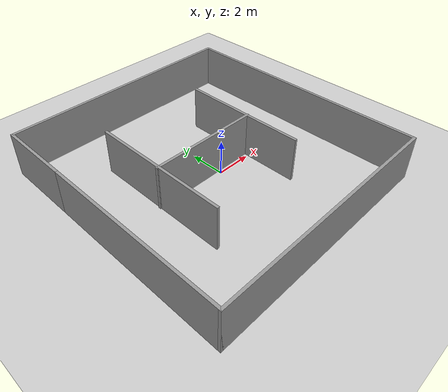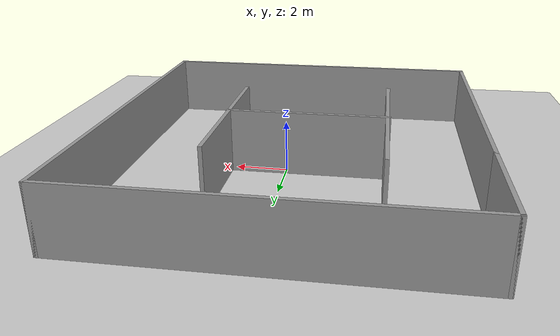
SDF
<sdf version="1.6">
 <world name="default">
  <light name="sun" type="directional">
   <pose>0 0 10 0 -0 0</pose>
   <diffuse>0.8 0.8 0.8 1</diffuse>
   <specular>0.2 0.2 0.2 1</specular>
   <attenuation>
    <range>1000</range>
    <constant>0.9</constant>
    <linear>0.01</linear>
    <quadratic>0.001</quadratic>
   </attenuation>
   <direction>-0.5 0.1 -0.9</direction>
  </light>
  <model name="ground_plane">
   <static>1</static>
   <link name="link">
    <collision name="collision">
     <geometry><plane><normal>0 0 1</normal><size>100 100</size></plane></geometry>
     <surface><friction><ode><mu>100</mu><mu2>50</mu2></ode></friction></surface>
    </collision>
    <visual name="visual">
     <cast_shadows>0</cast_shadows>
     <geometry><plane><normal>0 0 1</normal><size>100 100</size></plane></geometry>
     <material>
      <script><uri>file://media/materials/scripts/gazebo.material</uri><name>Gazebo/Grey</name></script>
     </material>
    </visual>
   </link>
  </model>
  <gravity>0 0 -9.8</gravity>
  <magnetic_field>6e-06 2.3e-05 -4.2e-05</magnetic_field>
  <atmosphere type="adiabatic"/>
  <physics name="default_physics" default="0" type="ode">
   <max_step_size>0.001</max_step_size>
   <real_time_factor>1</real_time_factor>
   <real_time_update_rate>1000</real_time_update_rate>
  </physics>
  <scene><ambient>0.4 0.4 0.4 1</ambient><background>0.7 0.7 0.7 1</background><shadows>1</shadows></scene>
  <spherical_coordinates>
   <surface_model>EARTH_WGS84</surface_model>
   <latitude_deg>0</latitude_deg>
   <longitude_deg>0</longitude_deg>
   <elevation>0</elevation>
   <heading_deg>0</heading_deg>
  </spherical_coordinates>
  <model name="coverage_test">
   <pose>-0.443684 0.180284 0 0 -0 0</pose>
   <link name="Wall_10">
    <collision name="Wall_10_Collision">
     <geometry><box><size>7.75 0.15 2.5</size></box></geometry>
     <pose>0 0 1.25 0 -0 0</pose>
    </collision>
    <visual name="Wall_10_Visual">
     <pose>0 0 1.25 0 -0 0</pose>
     <geometry><box><size>7.75 0.15 2.5</size></box></geometry>
     <material>
      <script><uri>file://media/materials/scripts/gazebo.material</uri><name>Gazebo/Grey</name></script>
      <ambient>1 1 1 1</ambient>
     </material>
     <meta><layer>0</layer></meta>
    </visual>
    <pose>-3.39815 0.183504 0 0 0 -1.5708</pose>
   </link>
   <link name="Wall_12">
    <collision name="Wall_12_Collision">
     <geometry><box><size>7 0.15 2.5</size></box></geometry>
     <pose>0 0 1.25 0 -0 0</pose>
    </collision>
    <visual name="Wall_12_Visual">
     <pose>0 0 1.25 0 -0 0</pose>
     <geometry><box><size>7 0.15 2.5</size></box></geometry>
     <material>
      <script><uri>file://media/materials/scripts/gazebo.material</uri><name>Gazebo/Grey</name></script>
      <ambient>1 1 1 1</ambient>
     </material>
     <meta><layer>0</layer></meta>
    </visual>
    <pose>2.62328 0.395763 0 0 0 -1.5708</pose>
   </link>
   <link name="Wall_14">
    <collision name="Wall_14_Collision">
     <geometry><box><size>6.25 0.15 2.5</size></box></geometry>
     <pose>0 0 1.25 0 -0 0</pose>
    </collision>
    <visual name="Wall_14_Visual">
     <pose>0 0 1.25 0 -0 0</pose>
     <geometry><box><size>6.25 0.15 2.5</size></box></geometry>
     <material>
      <script><uri>file://media/materials/scripts/gazebo.material</uri><name>Gazebo/Grey</name></script>
      <ambient>1 1 1 1</ambient>
     </material>
     <meta><layer>0</layer></meta>
    </visual>
    <pose>-0.401349 0.077715 0 0 -0 0</pose>
   </link>
   <link name="Wall_2">
    <collision name="Wall_2_Collision">
     <geometry><box><size>13.75 0.15 2.5</size></box></geometry>
     <pose>0 0 1.25 0 -0 0</pose>
    </collision>
    <visual name="Wall_2_Visual">
     <pose>0 0 1.25 0 -0 0</pose>
     <geometry><box><size>13.75 0.15 2.5</size></box></geometry>
     <material>
      <script><uri>file://media/materials/scripts/gazebo.material</uri><name>Gazebo/Grey</name></script>
      <ambient>1 1 1 1</ambient>
     </material>
     <meta><layer>0</layer></meta>
    </visual>
    <pose>0 -7.1 0 0 -0 0</pose>
   </link>
   <link name="Wall_4">
    <collision name="Wall_4_Collision">
     <geometry><box><size>10.25 0.15 2.5</size></box></geometry>
     <pose>0 0 1.25 0 -0 0</pose>
    </collision>
    <visual name="Wall_4_Visual">
     <pose>0 0 1.25 0 -0 0</pose>
     <geometry><box><size>10.25 0.15 2.5</size></box></geometry>
     <material>
      <script><uri>file://media/materials/scripts/gazebo.material</uri><name>Gazebo/Grey</name></script>
      <ambient>1 1 1 1</ambient>
     </material>
     <meta><layer>0</layer></meta>
    </visual>
    <pose>-6.8 -2.05 0 0 -0 1.5708</pose>
   </link>
   <link name="Wall_6">
    <collision name="Wall_6_Collision">
     <geometry><box><size>4.25 0.15 2.5</size></box></geometry>
     <pose>0 0 1.25 0 -0 0</pose>
    </collision>
    <visual name="Wall_6_Visual">
     <pose>0 0 1.25 0 -0 0</pose>
     <geometry><box><size>4.25 0.15 2.5</size></box></geometry>
     <material>
      <script><uri>file://media/materials/scripts/gazebo.material</uri><name>Gazebo/Grey</name></script>
      <ambient>1 1 1 1</ambient>
     </material>
     <meta><layer>0</layer></meta>
    </visual>
    <pose>-6.8 5.05 0 0 -0 1.5708</pose>
   </link>
   <link name="Wall_7">
    <collision name="Wall_7_Collision">
     <geometry><box><size>13.75 0.15 2.5</size></box></geometry>
     <pose>0 0 1.25 0 -0 0</pose>
    </collision>
    <visual name="Wall_7_Visual">
     <pose>0 0 1.25 0 -0 0</pose>
     <geometry><box><size>13.75 0.15 2.5</size></box></geometry>
     <material>
      <script><uri>file://media/materials/scripts/gazebo.material</uri><name>Gazebo/Grey</name></script>
      <ambient>1 1 1 1</ambient>
     </material>
     <meta><layer>0</layer></meta>
    </visual>
    <pose>0 7.1 0 0 -0 0</pose>
   </link>
   <link name="Wall_8">
    <collision name="Wall_8_Collision">
     <geometry><box><size>14.25 0.15 2.5</size></box></geometry>
     <pose>0 0 1.25 0 -0 0</pose>
    </collision>
    <visual name="Wall_8_Visual">
     <pose>0 0 1.25 0 -0 0</pose>
     <geometry><box><size>14.25 0.15 2.5</size></box></geometry>
     <material>
      <script><uri>file://media/materials/scripts/gazebo.material</uri><name>Gazebo/Grey</name></script>
      <ambient>1 1 1 1</ambient>
     </material>
     <meta><layer>0</layer></meta>
    </visual>
    <pose>6.8 0.05 0 0 0 -1.5708</pose>
   </link>
   <static>1</static>
  </model>
 </world>
</sdf>
